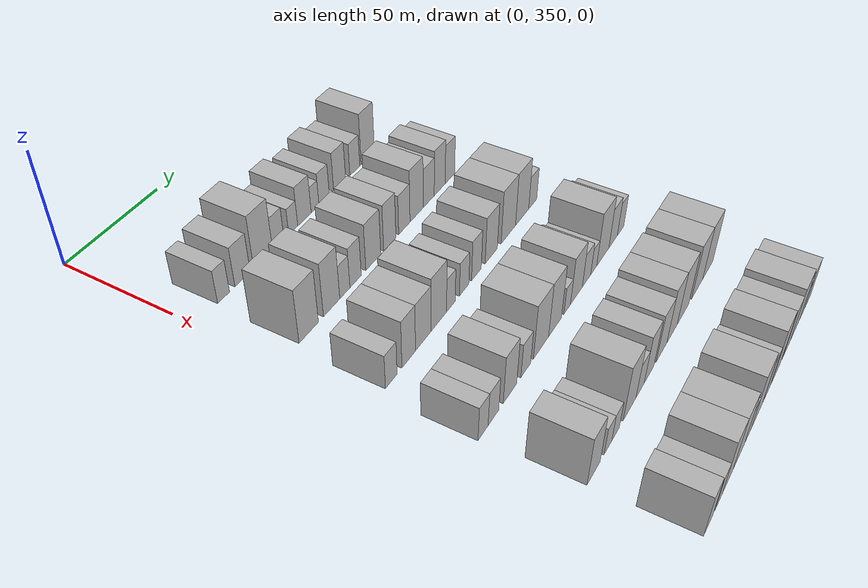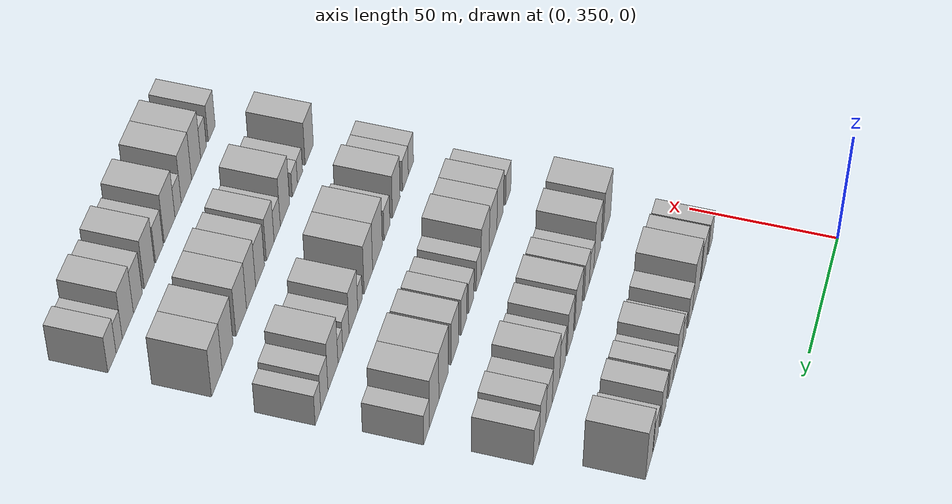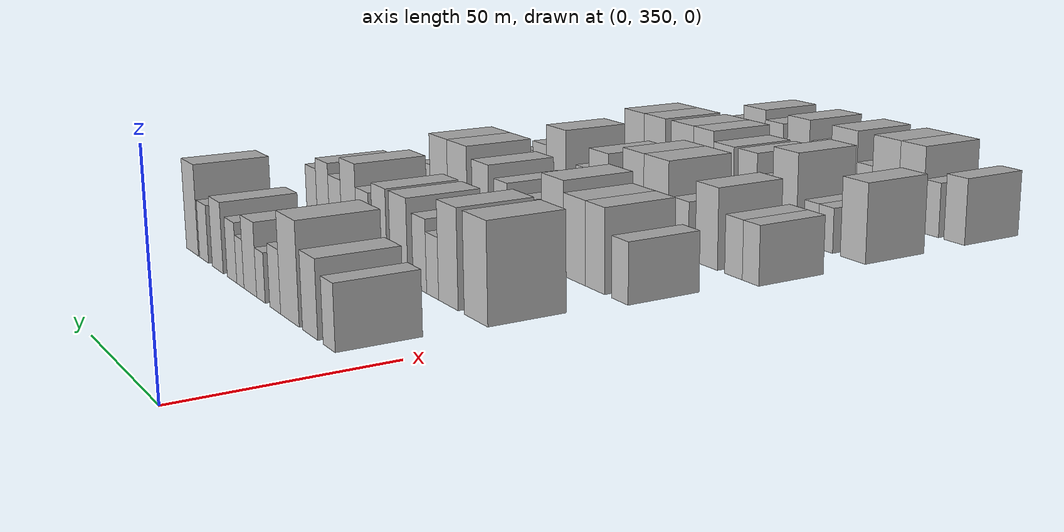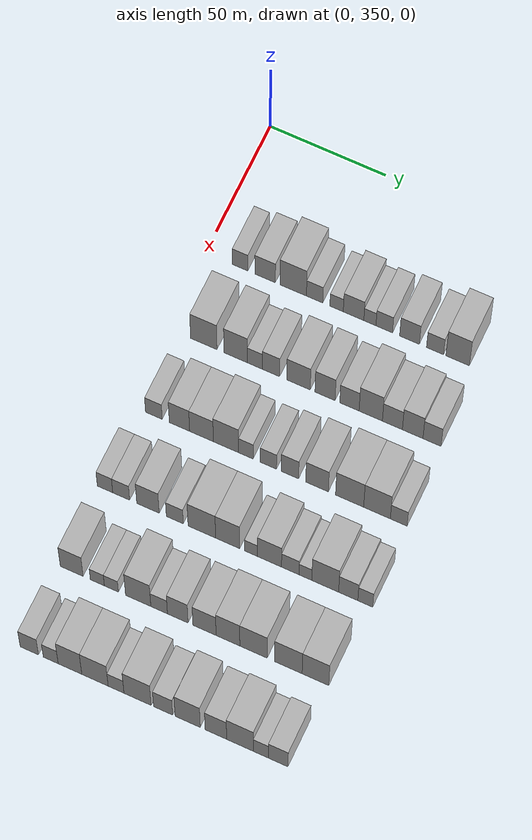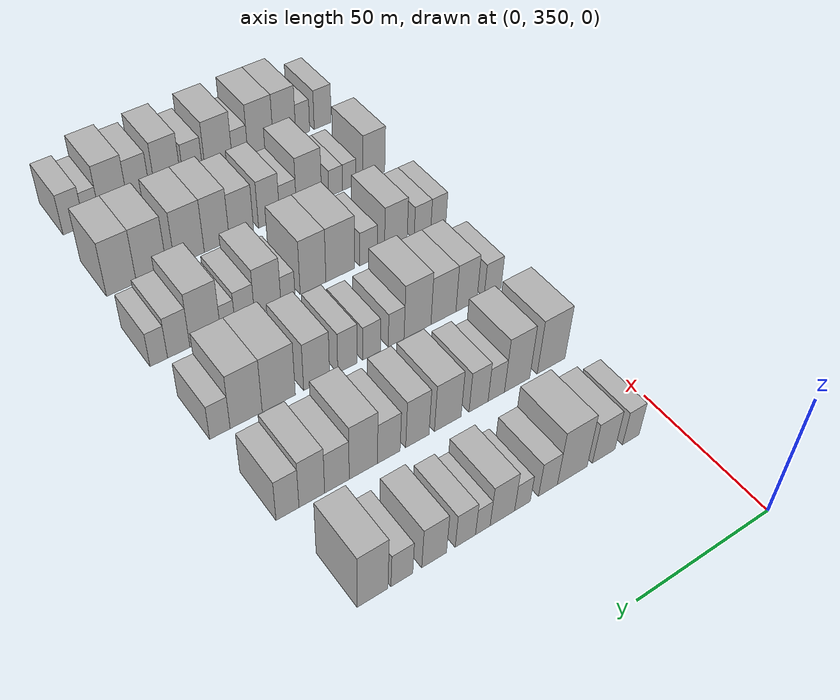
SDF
<sdf version="1.6">
 <world name="default">
  <model name="building_102">
   <static>1</static>
   <pose>50.0000 364.8833 0 0.000000 0.000000 0.000000</pose>
   <link name="link">
    <pose>0 0 7.50 0 0 0</pose>
    <collision name="collision"><geometry><box><size>20.0000 6.5952 15.0000</size></box></geometry></collision>
    <visual name="visual">
     <cast_shadows>0</cast_shadows>
     <geometry><box><size>20.0000 6.5952 15.0000</size></box></geometry>
     <material>
      <script>
       <uri>model://HANNAS_wall/materials/scripts</uri>
       <uri>model://HANNAS_wall/materials/textures</uri>
       <name>vrc/HANNAS_wall</name>
      </script>
     </material>
    </visual>
   </link>
  </model>
  <model name="building_103">
   <static>1</static>
   <pose>50.0000 375.5681 0 0.000000 0.000000 0.000000</pose>
   <link name="link">
    <pose>0 0 9.00 0 0 0</pose>
    <collision name="collision"><geometry><box><size>20.0000 8.7745 18.0000</size></box></geometry></collision>
    <visual name="visual">
     <cast_shadows>0</cast_shadows>
     <geometry><box><size>20.0000 8.7745 18.0000</size></box></geometry>
     <material>
      <script>
       <uri>model://HANNAS_wall/materials/scripts</uri>
       <uri>model://HANNAS_wall/materials/textures</uri>
       <name>vrc/HANNAS_wall</name>
      </script>
     </material>
    </visual>
   </link>
  </model>
  <model name="building_104">
   <static>1</static>
   <pose>50.0000 387.6037 0 0.000000 0.000000 0.000000</pose>
   <link name="link">
    <pose>0 0 12.00 0 0 0</pose>
    <collision name="collision"><geometry><box><size>20.0000 11.2968 24.0000</size></box></geometry></collision>
    <visual name="visual">
     <cast_shadows>0</cast_shadows>
     <geometry><box><size>20.0000 11.2968 24.0000</size></box></geometry>
     <material>
      <script>
       <uri>model://HANNAS_wall/materials/scripts</uri>
       <uri>model://HANNAS_wall/materials/textures</uri>
       <name>vrc/HANNAS_wall</name>
      </script>
     </material>
    </visual>
   </link>
  </model>
  <model name="building_105">
   <static>1</static>
   <pose>50.0000 396.7427 0 0.000000 0.000000 0.000000</pose>
   <link name="link">
    <pose>0 0 7.50 0 0 0</pose>
    <collision name="collision"><geometry><box><size>20.0000 6.9811 15.0000</size></box></geometry></collision>
    <visual name="visual">
     <cast_shadows>0</cast_shadows>
     <geometry><box><size>20.0000 6.9811 15.0000</size></box></geometry>
     <material>
      <script>
       <uri>model://HANNAS_wall/materials/scripts</uri>
       <uri>model://HANNAS_wall/materials/textures</uri>
       <name>vrc/HANNAS_wall</name>
      </script>
     </material>
    </visual>
   </link>
  </model>
  <model name="building_106">
   <static>1</static>
   <pose>50.0000 406.0928 0 0.000000 0.000000 0.000000</pose>
   <link name="link">
    <pose>0 0 6.00 0 0 0</pose>
    <collision name="collision"><geometry><box><size>20.0000 5.7191 12.0000</size></box></geometry></collision>
    <visual name="visual">
     <cast_shadows>0</cast_shadows>
     <geometry><box><size>20.0000 5.7191 12.0000</size></box></geometry>
     <material>
      <script>
       <uri>model://HANNAS_wall/materials/scripts</uri>
       <uri>model://HANNAS_wall/materials/textures</uri>
       <name>vrc/HANNAS_wall</name>
      </script>
     </material>
    </visual>
   </link>
  </model>
  <model name="building_107">
   <static>1</static>
   <pose>50.0000 413.3296 0 0.000000 0.000000 0.000000</pose>
   <link name="link">
    <pose>0 0 9.00 0 0 0</pose>
    <collision name="collision"><geometry><box><size>20.0000 8.7545 18.0000</size></box></geometry></collision>
    <visual name="visual">
     <cast_shadows>0</cast_shadows>
     <geometry><box><size>20.0000 8.7545 18.0000</size></box></geometry>
     <material>
      <script>
       <uri>model://HANNAS_wall/materials/scripts</uri>
       <uri>model://HANNAS_wall/materials/textures</uri>
       <name>vrc/HANNAS_wall</name>
      </script>
     </material>
    </visual>
   </link>
  </model>
  <model name="building_108">
   <static>1</static>
   <pose>50.0000 420.2775 0 0.000000 0.000000 0.000000</pose>
   <link name="link">
    <pose>0 0 6.00 0 0 0</pose>
    <collision name="collision"><geometry><box><size>20.0000 5.1414 12.0000</size></box></geometry></collision>
    <visual name="visual">
     <cast_shadows>0</cast_shadows>
     <geometry><box><size>20.0000 5.1414 12.0000</size></box></geometry>
     <material>
      <script>
       <uri>model://HANNAS_wall/materials/scripts</uri>
       <uri>model://HANNAS_wall/materials/textures</uri>
       <name>vrc/HANNAS_wall</name>
      </script>
     </material>
    </visual>
   </link>
  </model>
  <model name="building_109">
   <static>1</static>
   <pose>50.0000 426.3585 0 0.000000 0.000000 0.000000</pose>
   <link name="link">
    <pose>0 0 7.50 0 0 0</pose>
    <collision name="collision"><geometry><box><size>20.0000 7.0205 15.0000</size></box></geometry></collision>
    <visual name="visual">
     <cast_shadows>0</cast_shadows>
     <geometry><box><size>20.0000 7.0205 15.0000</size></box></geometry>
     <material>
      <script>
       <uri>model://HANNAS_wall/materials/scripts</uri>
       <uri>model://HANNAS_wall/materials/textures</uri>
       <name>vrc/HANNAS_wall</name>
      </script>
     </material>
    </visual>
   </link>
  </model>
  <model name="building_110">
   <static>1</static>
   <pose>50.0000 437.0555 0 0.000000 0.000000 0.000000</pose>
   <link name="link">
    <pose>0 0 9.00 0 0 0</pose>
    <collision name="collision"><geometry><box><size>20.0000 8.3734 18.0000</size></box></geometry></collision>
    <visual name="visual">
     <cast_shadows>0</cast_shadows>
     <geometry><box><size>20.0000 8.3734 18.0000</size></box></geometry>
     <material>
      <script>
       <uri>model://HANNAS_wall/materials/scripts</uri>
       <uri>model://HANNAS_wall/materials/textures</uri>
       <name>vrc/HANNAS_wall</name>
      </script>
     </material>
    </visual>
   </link>
  </model>
  <model name="building_111">
   <static>1</static>
   <pose>50.0000 447.8370 0 0.000000 0.000000 0.000000</pose>
   <link name="link">
    <pose>0 0 7.50 0 0 0</pose>
    <collision name="collision"><geometry><box><size>20.0000 7.1897 15.0000</size></box></geometry></collision>
    <visual name="visual">
     <cast_shadows>0</cast_shadows>
     <geometry><box><size>20.0000 7.1897 15.0000</size></box></geometry>
     <material>
      <script>
       <uri>model://HANNAS_wall/materials/scripts</uri>
       <uri>model://HANNAS_wall/materials/textures</uri>
       <name>vrc/HANNAS_wall</name>
      </script>
     </material>
    </visual>
   </link>
  </model>
  <model name="building_112">
   <static>1</static>
   <pose>50.0000 457.3846 0 0.000000 0.000000 0.000000</pose>
   <link name="link">
    <pose>0 0 12.00 0 0 0</pose>
    <collision name="collision"><geometry><box><size>20.0000 9.9054 24.0000</size></box></geometry></collision>
    <visual name="visual">
     <cast_shadows>0</cast_shadows>
     <geometry><box><size>20.0000 9.9054 24.0000</size></box></geometry>
     <material>
      <script>
       <uri>model://HANNAS_wall/materials/scripts</uri>
       <uri>model://HANNAS_wall/materials/textures</uri>
       <name>vrc/HANNAS_wall</name>
      </script>
     </material>
    </visual>
   </link>
  </model>
  <model name="building_233">
   <static>1</static>
   <pose>85.0000 365.7847 0 0.000000 0.000000 0.000000</pose>
   <link name="link">
    <pose>0 0 12.00 0 0 0</pose>
    <collision name="collision"><geometry><box><size>20.0000 11.2659 24.0000</size></box></geometry></collision>
    <visual name="visual">
     <cast_shadows>0</cast_shadows>
     <geometry><box><size>20.0000 11.2659 24.0000</size></box></geometry>
     <material>
      <script>
       <uri>model://HANNAS_wall/materials/scripts</uri>
       <uri>model://HANNAS_wall/materials/textures</uri>
       <name>vrc/HANNAS_wall</name>
      </script>
     </material>
    </visual>
   </link>
  </model>
  <model name="building_234">
   <static>1</static>
   <pose>85.0000 379.4049 0 0.000000 0.000000 0.000000</pose>
   <link name="link">
    <pose>0 0 12.00 0 0 0</pose>
    <collision name="collision"><geometry><box><size>20.0000 9.9745 24.0000</size></box></geometry></collision>
    <visual name="visual">
     <cast_shadows>0</cast_shadows>
     <geometry><box><size>20.0000 9.9745 24.0000</size></box></geometry>
     <material>
      <script>
       <uri>model://HANNAS_wall/materials/scripts</uri>
       <uri>model://HANNAS_wall/materials/textures</uri>
       <name>vrc/HANNAS_wall</name>
      </script>
     </material>
    </visual>
   </link>
  </model>
  <model name="building_235">
   <static>1</static>
   <pose>85.0000 387.5725 0 0.000000 0.000000 0.000000</pose>
   <link name="link">
    <pose>0 0 7.50 0 0 0</pose>
    <collision name="collision"><geometry><box><size>20.0000 6.3607 15.0000</size></box></geometry></collision>
    <visual name="visual">
     <cast_shadows>0</cast_shadows>
     <geometry><box><size>20.0000 6.3607 15.0000</size></box></geometry>
     <material>
      <script>
       <uri>model://HANNAS_wall/materials/scripts</uri>
       <uri>model://HANNAS_wall/materials/textures</uri>
       <name>vrc/HANNAS_wall</name>
      </script>
     </material>
    </visual>
   </link>
  </model>
  <model name="building_236">
   <static>1</static>
   <pose>85.0000 394.3996 0 0.000000 0.000000 0.000000</pose>
   <link name="link">
    <pose>0 0 9.00 0 0 0</pose>
    <collision name="collision"><geometry><box><size>20.0000 7.2936 18.0000</size></box></geometry></collision>
    <visual name="visual">
     <cast_shadows>0</cast_shadows>
     <geometry><box><size>20.0000 7.2936 18.0000</size></box></geometry>
     <material>
      <script>
       <uri>model://HANNAS_wall/materials/scripts</uri>
       <uri>model://HANNAS_wall/materials/textures</uri>
       <name>vrc/HANNAS_wall</name>
      </script>
     </material>
    </visual>
   </link>
  </model>
  <model name="building_237">
   <static>1</static>
   <pose>85.0000 406.0227 0 0.000000 0.000000 0.000000</pose>
   <link name="link">
    <pose>0 0 10.50 0 0 0</pose>
    <collision name="collision"><geometry><box><size>20.0000 9.9526 21.0000</size></box></geometry></collision>
    <visual name="visual">
     <cast_shadows>0</cast_shadows>
     <geometry><box><size>20.0000 9.9526 21.0000</size></box></geometry>
     <material>
      <script>
       <uri>model://HANNAS_wall/materials/scripts</uri>
       <uri>model://HANNAS_wall/materials/textures</uri>
       <name>vrc/HANNAS_wall</name>
      </script>
     </material>
    </visual>
   </link>
  </model>
  <model name="building_238">
   <static>1</static>
   <pose>85.0000 417.2450 0 0.000000 0.000000 0.000000</pose>
   <link name="link">
    <pose>0 0 10.50 0 0 0</pose>
    <collision name="collision"><geometry><box><size>20.0000 8.4921 21.0000</size></box></geometry></collision>
    <visual name="visual">
     <cast_shadows>0</cast_shadows>
     <geometry><box><size>20.0000 8.4921 21.0000</size></box></geometry>
     <material>
      <script>
       <uri>model://HANNAS_wall/materials/scripts</uri>
       <uri>model://HANNAS_wall/materials/textures</uri>
       <name>vrc/HANNAS_wall</name>
      </script>
     </material>
    </visual>
   </link>
  </model>
  <model name="building_239">
   <static>1</static>
   <pose>85.0000 427.5450 0 0.000000 0.000000 0.000000</pose>
   <link name="link">
    <pose>0 0 9.00 0 0 0</pose>
    <collision name="collision"><geometry><box><size>20.0000 8.1079 18.0000</size></box></geometry></collision>
    <visual name="visual">
     <cast_shadows>0</cast_shadows>
     <geometry><box><size>20.0000 8.1079 18.0000</size></box></geometry>
     <material>
      <script>
       <uri>model://HANNAS_wall/materials/scripts</uri>
       <uri>model://HANNAS_wall/materials/textures</uri>
       <name>vrc/HANNAS_wall</name>
      </script>
     </material>
    </visual>
   </link>
  </model>
  <model name="building_240">
   <static>1</static>
   <pose>85.0000 436.5046 0 0.000000 0.000000 0.000000</pose>
   <link name="link">
    <pose>0 0 12.00 0 0 0</pose>
    <collision name="collision"><geometry><box><size>20.0000 9.8112 24.0000</size></box></geometry></collision>
    <visual name="visual">
     <cast_shadows>0</cast_shadows>
     <geometry><box><size>20.0000 9.8112 24.0000</size></box></geometry>
     <material>
      <script>
       <uri>model://HANNAS_wall/materials/scripts</uri>
       <uri>model://HANNAS_wall/materials/textures</uri>
       <name>vrc/HANNAS_wall</name>
      </script>
     </material>
    </visual>
   </link>
  </model>
  <model name="building_241">
   <static>1</static>
   <pose>85.0000 445.6085 0 0.000000 0.000000 0.000000</pose>
   <link name="link">
    <pose>0 0 9.00 0 0 0</pose>
    <collision name="collision"><geometry><box><size>20.0000 8.3968 18.0000</size></box></geometry></collision>
    <visual name="visual">
     <cast_shadows>0</cast_shadows>
     <geometry><box><size>20.0000 8.3968 18.0000</size></box></geometry>
     <material>
      <script>
       <uri>model://HANNAS_wall/materials/scripts</uri>
       <uri>model://HANNAS_wall/materials/textures</uri>
       <name>vrc/HANNAS_wall</name>
      </script>
     </material>
    </visual>
   </link>
  </model>
  <model name="building_242">
   <static>1</static>
   <pose>85.0000 454.1133 0 0.000000 0.000000 0.000000</pose>
   <link name="link">
    <pose>0 0 10.50 0 0 0</pose>
    <collision name="collision"><geometry><box><size>20.0000 8.6128 21.0000</size></box></geometry></collision>
    <visual name="visual">
     <cast_shadows>0</cast_shadows>
     <geometry><box><size>20.0000 8.6128 21.0000</size></box></geometry>
     <material>
      <script>
       <uri>model://HANNAS_wall/materials/scripts</uri>
       <uri>model://HANNAS_wall/materials/textures</uri>
       <name>vrc/HANNAS_wall</name>
      </script>
     </material>
    </visual>
   </link>
  </model>
  <model name="building_243">
   <static>1</static>
   <pose>85.0000 462.2076 0 0.000000 0.000000 0.000000</pose>
   <link name="link">
    <pose>0 0 9.00 0 0 0</pose>
    <collision name="collision"><geometry><box><size>20.0000 7.5757 18.0000</size></box></geometry></collision>
    <visual name="visual">
     <cast_shadows>0</cast_shadows>
     <geometry><box><size>20.0000 7.5757 18.0000</size></box></geometry>
     <material>
      <script>
       <uri>model://HANNAS_wall/materials/scripts</uri>
       <uri>model://HANNAS_wall/materials/textures</uri>
       <name>vrc/HANNAS_wall</name>
      </script>
     </material>
    </visual>
   </link>
  </model>
  <model name="building_356">
   <static>1</static>
   <pose>120.0000 361.1886 0 0.000000 0.000000 0.000000</pose>
   <link name="link">
    <pose>0 0 7.50 0 0 0</pose>
    <collision name="collision"><geometry><box><size>20.0000 7.0832 15.0000</size></box></geometry></collision>
    <visual name="visual">
     <cast_shadows>0</cast_shadows>
     <geometry><box><size>20.0000 7.0832 15.0000</size></box></geometry>
     <material>
      <script>
       <uri>model://HANNAS_wall/materials/scripts</uri>
       <uri>model://HANNAS_wall/materials/textures</uri>
       <name>vrc/HANNAS_wall</name>
      </script>
     </material>
    </visual>
   </link>
  </model>
  <model name="building_357">
   <static>1</static>
   <pose>120.0000 372.0303 0 0.000000 0.000000 0.000000</pose>
   <link name="link">
    <pose>0 0 10.50 0 0 0</pose>
    <collision name="collision"><geometry><box><size>20.0000 8.6001 21.0000</size></box></geometry></collision>
    <visual name="visual">
     <cast_shadows>0</cast_shadows>
     <geometry><box><size>20.0000 8.6001 21.0000</size></box></geometry>
     <material>
      <script>
       <uri>model://HANNAS_wall/materials/scripts</uri>
       <uri>model://HANNAS_wall/materials/textures</uri>
       <name>vrc/HANNAS_wall</name>
      </script>
     </material>
    </visual>
   </link>
  </model>
  <model name="building_358">
   <static>1</static>
   <pose>120.0000 381.3657 0 0.000000 0.000000 0.000000</pose>
   <link name="link">
    <pose>0 0 10.50 0 0 0</pose>
    <collision name="collision"><geometry><box><size>20.0000 10.0707 21.0000</size></box></geometry></collision>
    <visual name="visual">
     <cast_shadows>0</cast_shadows>
     <geometry><box><size>20.0000 10.0707 21.0000</size></box></geometry>
     <material>
      <script>
       <uri>model://HANNAS_wall/materials/scripts</uri>
       <uri>model://HANNAS_wall/materials/textures</uri>
       <name>vrc/HANNAS_wall</name>
      </script>
     </material>
    </visual>
   </link>
  </model>
  <model name="building_359">
   <static>1</static>
   <pose>120.0000 391.7198 0 0.000000 0.000000 0.000000</pose>
   <link name="link">
    <pose>0 0 12.00 0 0 0</pose>
    <collision name="collision"><geometry><box><size>20.0000 10.6375 24.0000</size></box></geometry></collision>
    <visual name="visual">
     <cast_shadows>0</cast_shadows>
     <geometry><box><size>20.0000 10.6375 24.0000</size></box></geometry>
     <material>
      <script>
       <uri>model://HANNAS_wall/materials/scripts</uri>
       <uri>model://HANNAS_wall/materials/textures</uri>
       <name>vrc/HANNAS_wall</name>
      </script>
     </material>
    </visual>
   </link>
  </model>
  <model name="building_360">
   <static>1</static>
   <pose>120.0000 400.1053 0 0.000000 0.000000 0.000000</pose>
   <link name="link">
    <pose>0 0 7.50 0 0 0</pose>
    <collision name="collision"><geometry><box><size>20.0000 6.1336 15.0000</size></box></geometry></collision>
    <visual name="visual">
     <cast_shadows>0</cast_shadows>
     <geometry><box><size>20.0000 6.1336 15.0000</size></box></geometry>
     <material>
      <script>
       <uri>model://HANNAS_wall/materials/scripts</uri>
       <uri>model://HANNAS_wall/materials/textures</uri>
       <name>vrc/HANNAS_wall</name>
      </script>
     </material>
    </visual>
   </link>
  </model>
  <model name="building_361">
   <static>1</static>
   <pose>120.0000 409.5759 0 0.000000 0.000000 0.000000</pose>
   <link name="link">
    <pose>0 0 7.50 0 0 0</pose>
    <collision name="collision"><geometry><box><size>20.0000 6.8076 15.0000</size></box></geometry></collision>
    <visual name="visual">
     <cast_shadows>0</cast_shadows>
     <geometry><box><size>20.0000 6.8076 15.0000</size></box></geometry>
     <material>
      <script>
       <uri>model://HANNAS_wall/materials/scripts</uri>
       <uri>model://HANNAS_wall/materials/textures</uri>
       <name>vrc/HANNAS_wall</name>
      </script>
     </material>
    </visual>
   </link>
  </model>
  <model name="building_362">
   <static>1</static>
   <pose>120.0000 418.6079 0 0.000000 0.000000 0.000000</pose>
   <link name="link">
    <pose>0 0 9.00 0 0 0</pose>
    <collision name="collision"><geometry><box><size>20.0000 7.2563 18.0000</size></box></geometry></collision>
    <visual name="visual">
     <cast_shadows>0</cast_shadows>
     <geometry><box><size>20.0000 7.2563 18.0000</size></box></geometry>
     <material>
      <script>
       <uri>model://HANNAS_wall/materials/scripts</uri>
       <uri>model://HANNAS_wall/materials/textures</uri>
       <name>vrc/HANNAS_wall</name>
      </script>
     </material>
    </visual>
   </link>
  </model>
  <model name="building_363">
   <static>1</static>
   <pose>120.0000 429.9715 0 0.000000 0.000000 0.000000</pose>
   <link name="link">
    <pose>0 0 10.50 0 0 0</pose>
    <collision name="collision"><geometry><box><size>20.0000 9.4709 21.0000</size></box></geometry></collision>
    <visual name="visual">
     <cast_shadows>0</cast_shadows>
     <geometry><box><size>20.0000 9.4709 21.0000</size></box></geometry>
     <material>
      <script>
       <uri>model://HANNAS_wall/materials/scripts</uri>
       <uri>model://HANNAS_wall/materials/textures</uri>
       <name>vrc/HANNAS_wall</name>
      </script>
     </material>
    </visual>
   </link>
  </model>
  <model name="building_364">
   <static>1</static>
   <pose>120.0000 443.5776 0 0.000000 0.000000 0.000000</pose>
   <link name="link">
    <pose>0 0 12.00 0 0 0</pose>
    <collision name="collision"><geometry><box><size>20.0000 11.7414 24.0000</size></box></geometry></collision>
    <visual name="visual">
     <cast_shadows>0</cast_shadows>
     <geometry><box><size>20.0000 11.7414 24.0000</size></box></geometry>
     <material>
      <script>
       <uri>model://HANNAS_wall/materials/scripts</uri>
       <uri>model://HANNAS_wall/materials/textures</uri>
       <name>vrc/HANNAS_wall</name>
      </script>
     </material>
    </visual>
   </link>
  </model>
  <model name="building_365">
   <static>1</static>
   <pose>120.0000 455.0075 0 0.000000 0.000000 0.000000</pose>
   <link name="link">
    <pose>0 0 12.00 0 0 0</pose>
    <collision name="collision"><geometry><box><size>20.0000 11.1184 24.0000</size></box></geometry></collision>
    <visual name="visual">
     <cast_shadows>0</cast_shadows>
     <geometry><box><size>20.0000 11.1184 24.0000</size></box></geometry>
     <material>
      <script>
       <uri>model://HANNAS_wall/materials/scripts</uri>
       <uri>model://HANNAS_wall/materials/textures</uri>
       <name>vrc/HANNAS_wall</name>
      </script>
     </material>
    </visual>
   </link>
  </model>
  <model name="building_366">
   <static>1</static>
   <pose>120.0000 464.0497 0 0.000000 0.000000 0.000000</pose>
   <link name="link">
    <pose>0 0 7.50 0 0 0</pose>
    <collision name="collision"><geometry><box><size>20.0000 6.9659 15.0000</size></box></geometry></collision>
    <visual name="visual">
     <cast_shadows>0</cast_shadows>
     <geometry><box><size>20.0000 6.9659 15.0000</size></box></geometry>
     <material>
      <script>
       <uri>model://HANNAS_wall/materials/scripts</uri>
       <uri>model://HANNAS_wall/materials/textures</uri>
       <name>vrc/HANNAS_wall</name>
      </script>
     </material>
    </visual>
   </link>
  </model>
  <model name="building_479">
   <static>1</static>
   <pose>155.0000 357.3391 0 0.000000 0.000000 0.000000</pose>
   <link name="link">
    <pose>0 0 7.50 0 0 0</pose>
    <collision name="collision"><geometry><box><size>20.0000 6.5146 15.0000</size></box></geometry></collision>
    <visual name="visual">
     <cast_shadows>0</cast_shadows>
     <geometry><box><size>20.0000 6.5146 15.0000</size></box></geometry>
     <material>
      <script>
       <uri>model://HANNAS_wall/materials/scripts</uri>
       <uri>model://HANNAS_wall/materials/textures</uri>
       <name>vrc/HANNAS_wall</name>
      </script>
     </material>
    </visual>
   </link>
  </model>
  <model name="building_480">
   <static>1</static>
   <pose>155.0000 364.1674 0 0.000000 0.000000 0.000000</pose>
   <link name="link">
    <pose>0 0 7.50 0 0 0</pose>
    <collision name="collision"><geometry><box><size>20.0000 7.1421 15.0000</size></box></geometry></collision>
    <visual name="visual">
     <cast_shadows>0</cast_shadows>
     <geometry><box><size>20.0000 7.1421 15.0000</size></box></geometry>
     <material>
      <script>
       <uri>model://HANNAS_wall/materials/scripts</uri>
       <uri>model://HANNAS_wall/materials/textures</uri>
       <name>vrc/HANNAS_wall</name>
      </script>
     </material>
    </visual>
   </link>
  </model>
  <model name="building_481">
   <static>1</static>
   <pose>155.0000 375.4505 0 0.000000 0.000000 0.000000</pose>
   <link name="link">
    <pose>0 0 10.50 0 0 0</pose>
    <collision name="collision"><geometry><box><size>20.0000 9.4241 21.0000</size></box></geometry></collision>
    <visual name="visual">
     <cast_shadows>0</cast_shadows>
     <geometry><box><size>20.0000 9.4241 21.0000</size></box></geometry>
     <material>
      <script>
       <uri>model://HANNAS_wall/materials/scripts</uri>
       <uri>model://HANNAS_wall/materials/textures</uri>
       <name>vrc/HANNAS_wall</name>
      </script>
     </material>
    </visual>
   </link>
  </model>
  <model name="building_482">
   <static>1</static>
   <pose>155.0000 386.7257 0 0.000000 0.000000 0.000000</pose>
   <link name="link">
    <pose>0 0 7.50 0 0 0</pose>
    <collision name="collision"><geometry><box><size>20.0000 7.1262 15.0000</size></box></geometry></collision>
    <visual name="visual">
     <cast_shadows>0</cast_shadows>
     <geometry><box><size>20.0000 7.1262 15.0000</size></box></geometry>
     <material>
      <script>
       <uri>model://HANNAS_wall/materials/scripts</uri>
       <uri>model://HANNAS_wall/materials/textures</uri>
       <name>vrc/HANNAS_wall</name>
      </script>
     </material>
    </visual>
   </link>
  </model>
  <model name="building_483">
   <static>1</static>
   <pose>155.0000 398.0626 0 0.000000 0.000000 0.000000</pose>
   <link name="link">
    <pose>0 0 12.00 0 0 0</pose>
    <collision name="collision"><geometry><box><size>20.0000 11.5475 24.0000</size></box></geometry></collision>
    <visual name="visual">
     <cast_shadows>0</cast_shadows>
     <geometry><box><size>20.0000 11.5475 24.0000</size></box></geometry>
     <material>
      <script>
       <uri>model://HANNAS_wall/materials/scripts</uri>
       <uri>model://HANNAS_wall/materials/textures</uri>
       <name>vrc/HANNAS_wall</name>
      </script>
     </material>
    </visual>
   </link>
  </model>
  <model name="building_484">
   <static>1</static>
   <pose>155.0000 408.8771 0 0.000000 0.000000 0.000000</pose>
   <link name="link">
    <pose>0 0 12.00 0 0 0</pose>
    <collision name="collision"><geometry><box><size>20.0000 10.0816 24.0000</size></box></geometry></collision>
    <visual name="visual">
     <cast_shadows>0</cast_shadows>
     <geometry><box><size>20.0000 10.0816 24.0000</size></box></geometry>
     <material>
      <script>
       <uri>model://HANNAS_wall/materials/scripts</uri>
       <uri>model://HANNAS_wall/materials/textures</uri>
       <name>vrc/HANNAS_wall</name>
      </script>
     </material>
    </visual>
   </link>
  </model>
  <model name="building_485">
   <static>1</static>
   <pose>155.0000 418.6326 0 0.000000 0.000000 0.000000</pose>
   <link name="link">
    <pose>0 0 6.00 0 0 0</pose>
    <collision name="collision"><geometry><box><size>20.0000 5.4294 12.0000</size></box></geometry></collision>
    <visual name="visual">
     <cast_shadows>0</cast_shadows>
     <geometry><box><size>20.0000 5.4294 12.0000</size></box></geometry>
     <material>
      <script>
       <uri>model://HANNAS_wall/materials/scripts</uri>
       <uri>model://HANNAS_wall/materials/textures</uri>
       <name>vrc/HANNAS_wall</name>
      </script>
     </material>
    </visual>
   </link>
  </model>
  <model name="building_486">
   <static>1</static>
   <pose>155.0000 426.3251 0 0.000000 0.000000 0.000000</pose>
   <link name="link">
    <pose>0 0 10.50 0 0 0</pose>
    <collision name="collision"><geometry><box><size>20.0000 9.9556 21.0000</size></box></geometry></collision>
    <visual name="visual">
     <cast_shadows>0</cast_shadows>
     <geometry><box><size>20.0000 9.9556 21.0000</size></box></geometry>
     <material>
      <script>
       <uri>model://HANNAS_wall/materials/scripts</uri>
       <uri>model://HANNAS_wall/materials/textures</uri>
       <name>vrc/HANNAS_wall</name>
      </script>
     </material>
    </visual>
   </link>
  </model>
  <model name="building_487">
   <static>1</static>
   <pose>155.0000 434.9297 0 0.000000 0.000000 0.000000</pose>
   <link name="link">
    <pose>0 0 7.50 0 0 0</pose>
    <collision name="collision"><geometry><box><size>20.0000 7.2535 15.0000</size></box></geometry></collision>
    <visual name="visual">
     <cast_shadows>0</cast_shadows>
     <geometry><box><size>20.0000 7.2535 15.0000</size></box></geometry>
     <material>
      <script>
       <uri>model://HANNAS_wall/materials/scripts</uri>
       <uri>model://HANNAS_wall/materials/textures</uri>
       <name>vrc/HANNAS_wall</name>
      </script>
     </material>
    </visual>
   </link>
  </model>
  <model name="building_488">
   <static>1</static>
   <pose>155.0000 441.2170 0 0.000000 0.000000 0.000000</pose>
   <link name="link">
    <pose>0 0 6.00 0 0 0</pose>
    <collision name="collision"><geometry><box><size>20.0000 5.3212 12.0000</size></box></geometry></collision>
    <visual name="visual">
     <cast_shadows>0</cast_shadows>
     <geometry><box><size>20.0000 5.3212 12.0000</size></box></geometry>
     <material>
      <script>
       <uri>model://HANNAS_wall/materials/scripts</uri>
       <uri>model://HANNAS_wall/materials/textures</uri>
       <name>vrc/HANNAS_wall</name>
      </script>
     </material>
    </visual>
   </link>
  </model>
  <model name="building_489">
   <static>1</static>
   <pose>155.0000 449.4417 0 0.000000 0.000000 0.000000</pose>
   <link name="link">
    <pose>0 0 12.00 0 0 0</pose>
    <collision name="collision"><geometry><box><size>20.0000 11.1282 24.0000</size></box></geometry></collision>
    <visual name="visual">
     <cast_shadows>0</cast_shadows>
     <geometry><box><size>20.0000 11.1282 24.0000</size></box></geometry>
     <material>
      <script>
       <uri>model://HANNAS_wall/materials/scripts</uri>
       <uri>model://HANNAS_wall/materials/textures</uri>
       <name>vrc/HANNAS_wall</name>
      </script>
     </material>
    </visual>
   </link>
  </model>
  <model name="building_490">
   <static>1</static>
   <pose>155.0000 458.9832 0 0.000000 0.000000 0.000000</pose>
   <link name="link">
    <pose>0 0 9.00 0 0 0</pose>
    <collision name="collision"><geometry><box><size>20.0000 7.9548 18.0000</size></box></geometry></collision>
    <visual name="visual">
     <cast_shadows>0</cast_shadows>
     <geometry><box><size>20.0000 7.9548 18.0000</size></box></geometry>
     <material>
      <script>
       <uri>model://HANNAS_wall/materials/scripts</uri>
       <uri>model://HANNAS_wall/materials/textures</uri>
       <name>vrc/HANNAS_wall</name>
      </script>
     </material>
    </visual>
   </link>
  </model>
  <model name="building_491">
   <static>1</static>
   <pose>155.0000 466.0404 0 0.000000 0.000000 0.000000</pose>
   <link name="link">
    <pose>0 0 7.50 0 0 0</pose>
    <collision name="collision"><geometry><box><size>20.0000 6.1595 15.0000</size></box></geometry></collision>
    <visual name="visual">
     <cast_shadows>0</cast_shadows>
     <geometry><box><size>20.0000 6.1595 15.0000</size></box></geometry>
     <material>
      <script>
       <uri>model://HANNAS_wall/materials/scripts</uri>
       <uri>model://HANNAS_wall/materials/textures</uri>
       <name>vrc/HANNAS_wall</name>
      </script>
     </material>
    </visual>
   </link>
  </model>
  <model name="building_606">
   <static>1</static>
   <pose>190.0000 360.3326 0 0.000000 0.000000 0.000000</pose>
   <link name="link">
    <pose>0 0 10.50 0 0 0</pose>
    <collision name="collision"><geometry><box><size>20.0000 9.5757 21.0000</size></box></geometry></collision>
    <visual name="visual">
     <cast_shadows>0</cast_shadows>
     <geometry><box><size>20.0000 9.5757 21.0000</size></box></geometry>
     <material>
      <script>
       <uri>model://HANNAS_wall/materials/scripts</uri>
       <uri>model://HANNAS_wall/materials/textures</uri>
       <name>vrc/HANNAS_wall</name>
      </script>
     </material>
    </visual>
   </link>
  </model>
  <model name="building_607">
   <static>1</static>
   <pose>190.0000 371.0654 0 0.000000 0.000000 0.000000</pose>
   <link name="link">
    <pose>0 0 6.00 0 0 0</pose>
    <collision name="collision"><geometry><box><size>20.0000 5.8898 12.0000</size></box></geometry></collision>
    <visual name="visual">
     <cast_shadows>0</cast_shadows>
     <geometry><box><size>20.0000 5.8898 12.0000</size></box></geometry>
     <material>
      <script>
       <uri>model://HANNAS_wall/materials/scripts</uri>
       <uri>model://HANNAS_wall/materials/textures</uri>
       <name>vrc/HANNAS_wall</name>
      </script>
     </material>
    </visual>
   </link>
  </model>
  <model name="building_608">
   <static>1</static>
   <pose>190.0000 376.9484 0 0.000000 0.000000 0.000000</pose>
   <link name="link">
    <pose>0 0 6.00 0 0 0</pose>
    <collision name="collision"><geometry><box><size>20.0000 5.8761 12.0000</size></box></geometry></collision>
    <visual name="visual">
     <cast_shadows>0</cast_shadows>
     <geometry><box><size>20.0000 5.8761 12.0000</size></box></geometry>
     <material>
      <script>
       <uri>model://HANNAS_wall/materials/scripts</uri>
       <uri>model://HANNAS_wall/materials/textures</uri>
       <name>vrc/HANNAS_wall</name>
      </script>
     </material>
    </visual>
   </link>
  </model>
  <model name="building_609">
   <static>1</static>
   <pose>190.0000 388.1450 0 0.000000 0.000000 0.000000</pose>
   <link name="link">
    <pose>0 0 12.00 0 0 0</pose>
    <collision name="collision"><geometry><box><size>20.0000 10.5172 24.0000</size></box></geometry></collision>
    <visual name="visual">
     <cast_shadows>0</cast_shadows>
     <geometry><box><size>20.0000 10.5172 24.0000</size></box></geometry>
     <material>
      <script>
       <uri>model://HANNAS_wall/materials/scripts</uri>
       <uri>model://HANNAS_wall/materials/textures</uri>
       <name>vrc/HANNAS_wall</name>
      </script>
     </material>
    </visual>
   </link>
  </model>
  <model name="building_610">
   <static>1</static>
   <pose>190.0000 396.8705 0 0.000000 0.000000 0.000000</pose>
   <link name="link">
    <pose>0 0 7.50 0 0 0</pose>
    <collision name="collision"><geometry><box><size>20.0000 6.9337 15.0000</size></box></geometry></collision>
    <visual name="visual">
     <cast_shadows>0</cast_shadows>
     <geometry><box><size>20.0000 6.9337 15.0000</size></box></geometry>
     <material>
      <script>
       <uri>model://HANNAS_wall/materials/scripts</uri>
       <uri>model://HANNAS_wall/materials/textures</uri>
       <name>vrc/HANNAS_wall</name>
      </script>
     </material>
    </visual>
   </link>
  </model>
  <model name="building_611">
   <static>1</static>
   <pose>190.0000 404.6258 0 0.000000 0.000000 0.000000</pose>
   <link name="link">
    <pose>0 0 10.50 0 0 0</pose>
    <collision name="collision"><geometry><box><size>20.0000 8.5770 21.0000</size></box></geometry></collision>
    <visual name="visual">
     <cast_shadows>0</cast_shadows>
     <geometry><box><size>20.0000 8.5770 21.0000</size></box></geometry>
     <material>
      <script>
       <uri>model://HANNAS_wall/materials/scripts</uri>
       <uri>model://HANNAS_wall/materials/textures</uri>
       <name>vrc/HANNAS_wall</name>
      </script>
     </material>
    </visual>
   </link>
  </model>
  <model name="building_612">
   <static>1</static>
   <pose>190.0000 415.7182 0 0.000000 0.000000 0.000000</pose>
   <link name="link">
    <pose>0 0 10.50 0 0 0</pose>
    <collision name="collision"><geometry><box><size>20.0000 9.6078 21.0000</size></box></geometry></collision>
    <visual name="visual">
     <cast_shadows>0</cast_shadows>
     <geometry><box><size>20.0000 9.6078 21.0000</size></box></geometry>
     <material>
      <script>
       <uri>model://HANNAS_wall/materials/scripts</uri>
       <uri>model://HANNAS_wall/materials/textures</uri>
       <name>vrc/HANNAS_wall</name>
      </script>
     </material>
    </visual>
   </link>
  </model>
  <model name="building_613">
   <static>1</static>
   <pose>190.0000 425.4380 0 0.000000 0.000000 0.000000</pose>
   <link name="link">
    <pose>0 0 12.00 0 0 0</pose>
    <collision name="collision"><geometry><box><size>20.0000 9.8319 24.0000</size></box></geometry></collision>
    <visual name="visual">
     <cast_shadows>0</cast_shadows>
     <geometry><box><size>20.0000 9.8319 24.0000</size></box></geometry>
     <material>
      <script>
       <uri>model://HANNAS_wall/materials/scripts</uri>
       <uri>model://HANNAS_wall/materials/textures</uri>
       <name>vrc/HANNAS_wall</name>
      </script>
     </material>
    </visual>
   </link>
  </model>
  <model name="building_614">
   <static>1</static>
   <pose>190.0000 436.0005 0 0.000000 0.000000 0.000000</pose>
   <link name="link">
    <pose>0 0 12.00 0 0 0</pose>
    <collision name="collision"><geometry><box><size>20.0000 11.2933 24.0000</size></box></geometry></collision>
    <visual name="visual">
     <cast_shadows>0</cast_shadows>
     <geometry><box><size>20.0000 11.2933 24.0000</size></box></geometry>
     <material>
      <script>
       <uri>model://HANNAS_wall/materials/scripts</uri>
       <uri>model://HANNAS_wall/materials/textures</uri>
       <name>vrc/HANNAS_wall</name>
      </script>
     </material>
    </visual>
   </link>
  </model>
  <model name="building_615">
   <static>1</static>
   <pose>190.0000 450.3452 0 0.000000 0.000000 0.000000</pose>
   <link name="link">
    <pose>0 0 12.00 0 0 0</pose>
    <collision name="collision"><geometry><box><size>20.0000 11.3961 24.0000</size></box></geometry></collision>
    <visual name="visual">
     <cast_shadows>0</cast_shadows>
     <geometry><box><size>20.0000 11.3961 24.0000</size></box></geometry>
     <material>
      <script>
       <uri>model://HANNAS_wall/materials/scripts</uri>
       <uri>model://HANNAS_wall/materials/textures</uri>
       <name>vrc/HANNAS_wall</name>
      </script>
     </material>
    </visual>
   </link>
  </model>
  <model name="building_616">
   <static>1</static>
   <pose>190.0000 461.5210 0 0.000000 0.000000 0.000000</pose>
   <link name="link">
    <pose>0 0 12.00 0 0 0</pose>
    <collision name="collision"><geometry><box><size>20.0000 10.9555 24.0000</size></box></geometry></collision>
    <visual name="visual">
     <cast_shadows>0</cast_shadows>
     <geometry><box><size>20.0000 10.9555 24.0000</size></box></geometry>
     <material>
      <script>
       <uri>model://HANNAS_wall/materials/scripts</uri>
       <uri>model://HANNAS_wall/materials/textures</uri>
       <name>vrc/HANNAS_wall</name>
      </script>
     </material>
    </visual>
   </link>
  </model>
  <model name="building_732">
   <static>1</static>
   <pose>225.0000 359.7849 0 0.000000 0.000000 0.000000</pose>
   <link name="link">
    <pose>0 0 9.00 0 0 0</pose>
    <collision name="collision"><geometry><box><size>20.0000 7.6300 18.0000</size></box></geometry></collision>
    <visual name="visual">
     <cast_shadows>0</cast_shadows>
     <geometry><box><size>20.0000 7.6300 18.0000</size></box></geometry>
     <material>
      <script>
       <uri>model://HANNAS_wall/materials/scripts</uri>
       <uri>model://HANNAS_wall/materials/textures</uri>
       <name>vrc/HANNAS_wall</name>
      </script>
     </material>
    </visual>
   </link>
  </model>
  <model name="building_733">
   <static>1</static>
   <pose>225.0000 368.6916 0 0.000000 0.000000 0.000000</pose>
   <link name="link">
    <pose>0 0 7.50 0 0 0</pose>
    <collision name="collision"><geometry><box><size>20.0000 6.1835 15.0000</size></box></geometry></collision>
    <visual name="visual">
     <cast_shadows>0</cast_shadows>
     <geometry><box><size>20.0000 6.1835 15.0000</size></box></geometry>
     <material>
      <script>
       <uri>model://HANNAS_wall/materials/scripts</uri>
       <uri>model://HANNAS_wall/materials/textures</uri>
       <name>vrc/HANNAS_wall</name>
      </script>
     </material>
    </visual>
   </link>
  </model>
  <model name="building_734">
   <static>1</static>
   <pose>225.0000 376.6875 0 0.000000 0.000000 0.000000</pose>
   <link name="link">
    <pose>0 0 12.00 0 0 0</pose>
    <collision name="collision"><geometry><box><size>20.0000 9.8082 24.0000</size></box></geometry></collision>
    <visual name="visual">
     <cast_shadows>0</cast_shadows>
     <geometry><box><size>20.0000 9.8082 24.0000</size></box></geometry>
     <material>
      <script>
       <uri>model://HANNAS_wall/materials/scripts</uri>
       <uri>model://HANNAS_wall/materials/textures</uri>
       <name>vrc/HANNAS_wall</name>
      </script>
     </material>
    </visual>
   </link>
  </model>
  <model name="building_735">
   <static>1</static>
   <pose>225.0000 387.0555 0 0.000000 0.000000 0.000000</pose>
   <link name="link">
    <pose>0 0 12.00 0 0 0</pose>
    <collision name="collision"><geometry><box><size>20.0000 10.9278 24.0000</size></box></geometry></collision>
    <visual name="visual">
     <cast_shadows>0</cast_shadows>
     <geometry><box><size>20.0000 10.9278 24.0000</size></box></geometry>
     <material>
      <script>
       <uri>model://HANNAS_wall/materials/scripts</uri>
       <uri>model://HANNAS_wall/materials/textures</uri>
       <name>vrc/HANNAS_wall</name>
      </script>
     </material>
    </visual>
   </link>
  </model>
  <model name="building_736">
   <static>1</static>
   <pose>225.0000 395.7987 0 0.000000 0.000000 0.000000</pose>
   <link name="link">
    <pose>0 0 7.50 0 0 0</pose>
    <collision name="collision"><geometry><box><size>20.0000 6.5586 15.0000</size></box></geometry></collision>
    <visual name="visual">
     <cast_shadows>0</cast_shadows>
     <geometry><box><size>20.0000 6.5586 15.0000</size></box></geometry>
     <material>
      <script>
       <uri>model://HANNAS_wall/materials/scripts</uri>
       <uri>model://HANNAS_wall/materials/textures</uri>
       <name>vrc/HANNAS_wall</name>
      </script>
     </material>
    </visual>
   </link>
  </model>
  <model name="building_737">
   <static>1</static>
   <pose>225.0000 404.6905 0 0.000000 0.000000 0.000000</pose>
   <link name="link">
    <pose>0 0 12.00 0 0 0</pose>
    <collision name="collision"><geometry><box><size>20.0000 11.2248 24.0000</size></box></geometry></collision>
    <visual name="visual">
     <cast_shadows>0</cast_shadows>
     <geometry><box><size>20.0000 11.2248 24.0000</size></box></geometry>
     <material>
      <script>
       <uri>model://HANNAS_wall/materials/scripts</uri>
       <uri>model://HANNAS_wall/materials/textures</uri>
       <name>vrc/HANNAS_wall</name>
      </script>
     </material>
    </visual>
   </link>
  </model>
  <model name="building_738">
   <static>1</static>
   <pose>225.0000 415.2422 0 0.000000 0.000000 0.000000</pose>
   <link name="link">
    <pose>0 0 9.00 0 0 0</pose>
    <collision name="collision"><geometry><box><size>20.0000 7.8788 18.0000</size></box></geometry></collision>
    <visual name="visual">
     <cast_shadows>0</cast_shadows>
     <geometry><box><size>20.0000 7.8788 18.0000</size></box></geometry>
     <material>
      <script>
       <uri>model://HANNAS_wall/materials/scripts</uri>
       <uri>model://HANNAS_wall/materials/textures</uri>
       <name>vrc/HANNAS_wall</name>
      </script>
     </material>
    </visual>
   </link>
  </model>
  <model name="building_739">
   <static>1</static>
   <pose>225.0000 425.3607 0 0.000000 0.000000 0.000000</pose>
   <link name="link">
    <pose>0 0 12.00 0 0 0</pose>
    <collision name="collision"><geometry><box><size>20.0000 10.3582 24.0000</size></box></geometry></collision>
    <visual name="visual">
     <cast_shadows>0</cast_shadows>
     <geometry><box><size>20.0000 10.3582 24.0000</size></box></geometry>
     <material>
      <script>
       <uri>model://HANNAS_wall/materials/scripts</uri>
       <uri>model://HANNAS_wall/materials/textures</uri>
       <name>vrc/HANNAS_wall</name>
      </script>
     </material>
    </visual>
   </link>
  </model>
  <model name="building_740">
   <static>1</static>
   <pose>225.0000 436.9463 0 0.000000 0.000000 0.000000</pose>
   <link name="link">
    <pose>0 0 10.50 0 0 0</pose>
    <collision name="collision"><geometry><box><size>20.0000 8.8130 21.0000</size></box></geometry></collision>
    <visual name="visual">
     <cast_shadows>0</cast_shadows>
     <geometry><box><size>20.0000 8.8130 21.0000</size></box></geometry>
     <material>
      <script>
       <uri>model://HANNAS_wall/materials/scripts</uri>
       <uri>model://HANNAS_wall/materials/textures</uri>
       <name>vrc/HANNAS_wall</name>
      </script>
     </material>
    </visual>
   </link>
  </model>
  <model name="building_741">
   <static>1</static>
   <pose>225.0000 446.8327 0 0.000000 0.000000 0.000000</pose>
   <link name="link">
    <pose>0 0 12.00 0 0 0</pose>
    <collision name="collision"><geometry><box><size>20.0000 10.9599 24.0000</size></box></geometry></collision>
    <visual name="visual">
     <cast_shadows>0</cast_shadows>
     <geometry><box><size>20.0000 10.9599 24.0000</size></box></geometry>
     <material>
      <script>
       <uri>model://HANNAS_wall/materials/scripts</uri>
       <uri>model://HANNAS_wall/materials/textures</uri>
       <name>vrc/HANNAS_wall</name>
      </script>
     </material>
    </visual>
   </link>
  </model>
  <model name="building_742">
   <static>1</static>
   <pose>225.0000 455.3557 0 0.000000 0.000000 0.000000</pose>
   <link name="link">
    <pose>0 0 7.50 0 0 0</pose>
    <collision name="collision"><geometry><box><size>20.0000 6.0862 15.0000</size></box></geometry></collision>
    <visual name="visual">
     <cast_shadows>0</cast_shadows>
     <geometry><box><size>20.0000 6.0862 15.0000</size></box></geometry>
     <material>
      <script>
       <uri>model://HANNAS_wall/materials/scripts</uri>
       <uri>model://HANNAS_wall/materials/textures</uri>
       <name>vrc/HANNAS_wall</name>
      </script>
     </material>
    </visual>
   </link>
  </model>
  <model name="building_743">
   <static>1</static>
   <pose>225.0000 462.4154 0 0.000000 0.000000 0.000000</pose>
   <link name="link">
    <pose>0 0 9.00 0 0 0</pose>
    <collision name="collision"><geometry><box><size>20.0000 8.0332 18.0000</size></box></geometry></collision>
    <visual name="visual">
     <cast_shadows>0</cast_shadows>
     <geometry><box><size>20.0000 8.0332 18.0000</size></box></geometry>
     <material>
      <script>
       <uri>model://HANNAS_wall/materials/scripts</uri>
       <uri>model://HANNAS_wall/materials/textures</uri>
       <name>vrc/HANNAS_wall</name>
      </script>
     </material>
    </visual>
   </link>
  </model>
 </world>
</sdf>
